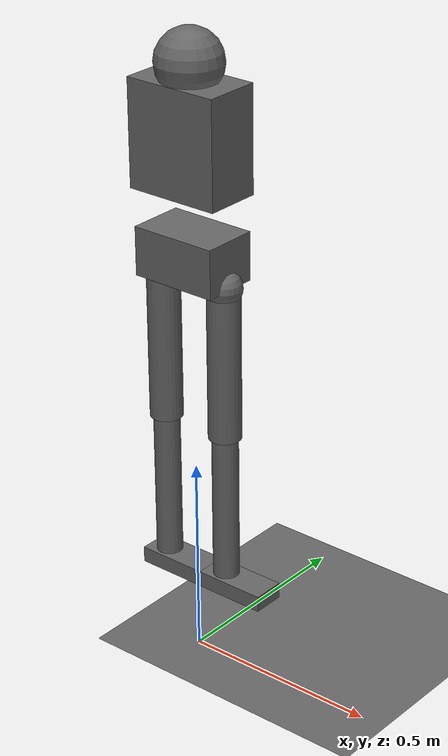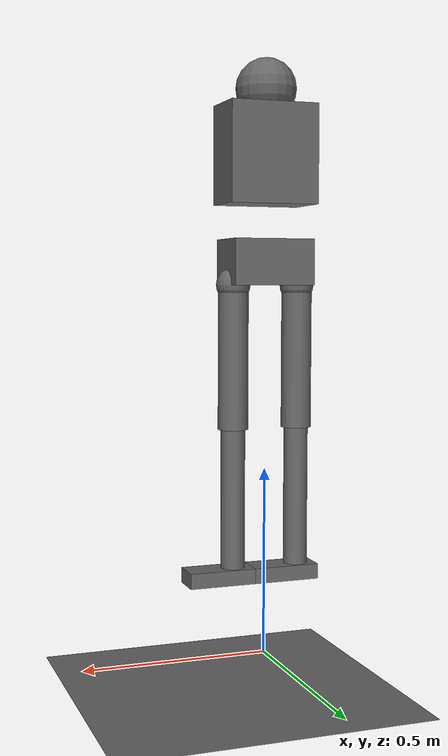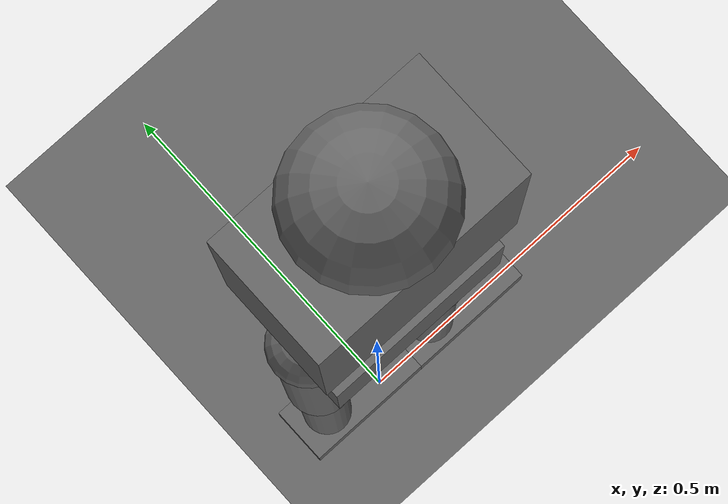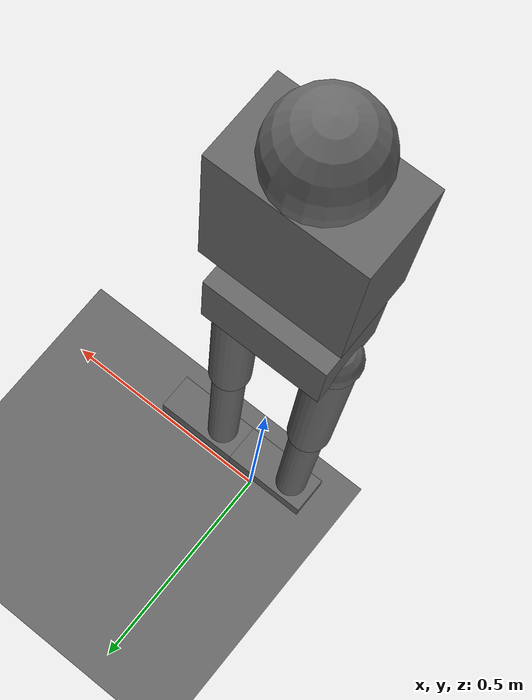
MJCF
<mujoco model="biped_robot">

  <!-- ==================== COMPILER ==================== -->
  <compiler angle="radian" inertiafromgeom="true"/>

  <!-- ==================== OPTIONS ==================== -->
  <option timestep="0.002" gravity="0 0 -9.81" iterations="50" solver="Newton"/>

  <!-- ==================== DEFAULTS ==================== -->
  <default>
    <joint limited="true" damping="1.0" armature="0.01"/>
    <geom contype="1" conaffinity="1" condim="3"
          friction="1.0 0.005 0.0001" rgba="0.4 0.4 0.4 1"/>
    <motor ctrllimited="true" ctrlrange="-1 1"/>
  </default>

  <!-- ==================== ASSETS ==================== -->
  <asset>
    <texture name="grid" type="2d" builtin="checker"
             width="512" height="512"
             rgb1="0.85 0.85 0.85" rgb2="0.65 0.65 0.65"/>
    <material name="grid_mat" texture="grid"
              texrepeat="4 4" reflectance="0.3"/>
    <material name="body_mat"  rgba="0.2 0.4 0.8 1"/>
    <material name="joint_mat" rgba="0.9 0.5 0.1 1"/>
    <material name="shin_mat"  rgba="0.3 0.3 0.3 1"/>
    <material name="foot_mat"  rgba="0.8 0.1 0.1 1"/>
    <material name="head_mat"  rgba="0.9 0.9 0.9 1"/>
  </asset>

  <!-- ==================== WORLD ==================== -->
  <worldbody>

    <!-- Ground plane -->
    <geom name="floor" type="plane"
          size="10 10 0.1" pos="0 0 0"
          material="grid_mat" contype="1" conaffinity="1"/>

    <!-- Lighting -->
    <light directional="true" diffuse="0.8 0.8 0.8"
           specular="0.2 0.2 0.2" pos="0 0 5" dir="0 0 -1"/>
    <light directional="true" diffuse="0.4 0.4 0.4"
           pos="2 2 3" dir="-1 -1 -1"/>

    <!-- ===== PELVIS (floating base — free joint) ===== -->
    <body name="pelvis" pos="0 0 1.05">
      <freejoint name="root"/>
      <geom name="pelvis_geom" type="box"
            size="0.11 0.07 0.06"
            material="body_mat"/>
      <site name="pelvis_site" pos="0 0 0" size="0.01"/>

      <!-- ===== TORSO ===== -->
      <body name="torso" pos="0 0 0.18">
        <geom name="torso_geom" type="box"
              size="0.12 0.07 0.13" pos="0 0 0.1"
              material="body_mat"/>
        <!-- HEAD -->
        <body name="head" pos="0 0 0.27">
          <geom name="head_geom" type="sphere"
                size="0.08" material="head_mat"/>
        </body>
      </body>

      <!-- ==================== LEFT LEG ==================== -->
      <body name="left_hip" pos="0.09 0 -0.06">
        <!-- Hip roll joint -->
        <joint name="left_hip_roll" type="hinge"
               axis="1 0 0" range="-0.5 0.5"
               damping="2.0" stiffness="5.0"/>
        <geom name="left_hip_geom" type="sphere"
              size="0.045" material="joint_mat"/>

        <body name="left_thigh" pos="0 0 0">
          <!-- Hip pitch joint -->
          <joint name="left_hip_pitch" type="hinge"
                 axis="0 1 0" range="-1.2 1.2"
                 damping="2.0" stiffness="5.0"/>
          <geom name="left_thigh_geom" type="cylinder"
                size="0.04 0.19" pos="0 0 -0.19"
                material="body_mat"/>

          <body name="left_shin" pos="0 0 -0.38">
            <!-- Knee joint -->
            <joint name="left_knee" type="hinge"
                   axis="0 1 0" range="0.0 2.0"
                   damping="1.5" stiffness="3.0"/>
            <geom name="left_shin_geom" type="cylinder"
                  size="0.032 0.185" pos="0 0 -0.185"
                  material="shin_mat"/>

            <body name="left_foot" pos="0 0 -0.37">
              <!-- Ankle joint -->
              <joint name="left_ankle" type="hinge"
                     axis="0 1 0" range="-0.7 0.7"
                     damping="1.0" stiffness="2.0"/>
              <geom name="left_foot_geom" type="box"
                    size="0.09 0.04 0.02" pos="0.04 0 -0.02"
                    material="foot_mat"
                    friction="1.5 0.01 0.001"/>
              <site name="left_foot_site" pos="0 0 -0.04" size="0.01"/>
            </body>
          </body>
        </body>
      </body>

      <!-- ==================== RIGHT LEG ==================== -->
      <body name="right_hip" pos="-0.09 0 -0.06">
        <!-- Hip roll joint -->
        <joint name="right_hip_roll" type="hinge"
               axis="1 0 0" range="-0.5 0.5"
               damping="2.0" stiffness="5.0"/>
        <geom name="right_hip_geom" type="sphere"
              size="0.045" material="joint_mat"/>

        <body name="right_thigh" pos="0 0 0">
          <!-- Hip pitch joint -->
          <joint name="right_hip_pitch" type="hinge"
                 axis="0 1 0" range="-1.2 1.2"
                 damping="2.0" stiffness="5.0"/>
          <geom name="right_thigh_geom" type="cylinder"
                size="0.04 0.19" pos="0 0 -0.19"
                material="body_mat"/>

          <body name="right_shin" pos="0 0 -0.38">
            <!-- Knee joint -->
            <joint name="right_knee" type="hinge"
                   axis="0 1 0" range="0.0 2.0"
                   damping="1.5" stiffness="3.0"/>
            <geom name="right_shin_geom" type="cylinder"
                  size="0.032 0.185" pos="0 0 -0.185"
                  material="shin_mat"/>

            <body name="right_foot" pos="0 0 -0.37">
              <!-- Ankle joint -->
              <joint name="right_ankle" type="hinge"
                     axis="0 1 0" range="-0.7 0.7"
                     damping="1.0" stiffness="2.0"/>
              <geom name="right_foot_geom" type="box"
                    size="0.09 0.04 0.02" pos="0.04 0 -0.02"
                    material="foot_mat"
                    friction="1.5 0.01 0.001"/>
              <site name="right_foot_site" pos="0 0 -0.04" size="0.01"/>
            </body>
          </body>
        </body>
      </body>

    </body>
  </worldbody>

  <!-- ==================== ACTUATORS ==================== -->
  <!--
    Motor torque limits (Nm):
      Hip roll  : ±40 Nm
      Hip pitch : ±80 Nm
      Knee      : ±60 Nm
      Ankle     : ±40 Nm
    gear = peak torque (ctrl is normalized -1 to 1)
  -->
  <actuator>
    <motor name="left_hip_roll_motor"  joint="left_hip_roll"  gear="40"  ctrllimited="true" ctrlrange="-1 1"/>
    <motor name="left_hip_pitch_motor" joint="left_hip_pitch" gear="80"  ctrllimited="true" ctrlrange="-1 1"/>
    <motor name="left_knee_motor"      joint="left_knee"      gear="60"  ctrllimited="true" ctrlrange="-1 1"/>
    <motor name="left_ankle_motor"     joint="left_ankle"     gear="40"  ctrllimited="true" ctrlrange="-1 1"/>

    <motor name="right_hip_roll_motor"  joint="right_hip_roll"  gear="40"  ctrllimited="true" ctrlrange="-1 1"/>
    <motor name="right_hip_pitch_motor" joint="right_hip_pitch" gear="80"  ctrllimited="true" ctrlrange="-1 1"/>
    <motor name="right_knee_motor"      joint="right_knee"      gear="60"  ctrllimited="true" ctrlrange="-1 1"/>
    <motor name="right_ankle_motor"     joint="right_ankle"     gear="40"  ctrllimited="true" ctrlrange="-1 1"/>
  </actuator>

  <!-- ==================== SENSORS ==================== -->
  <sensor>
    <accelerometer name="pelvis_accel" site="pelvis_site"/>
    <framepos name="left_foot_pos"  objtype="site" objname="left_foot_site"/>
    <framepos name="right_foot_pos" objtype="site" objname="right_foot_site"/>
    <jointpos name="lhr_pos" joint="left_hip_roll"/>
    <jointpos name="lhp_pos" joint="left_hip_pitch"/>
    <jointpos name="lk_pos"  joint="left_knee"/>
    <jointpos name="la_pos"  joint="left_ankle"/>
    <jointpos name="rhr_pos" joint="right_hip_roll"/>
    <jointpos name="rhp_pos" joint="right_hip_pitch"/>
    <jointpos name="rk_pos"  joint="right_knee"/>
    <jointpos name="ra_pos"  joint="right_ankle"/>
  </sensor>

</mujoco>
